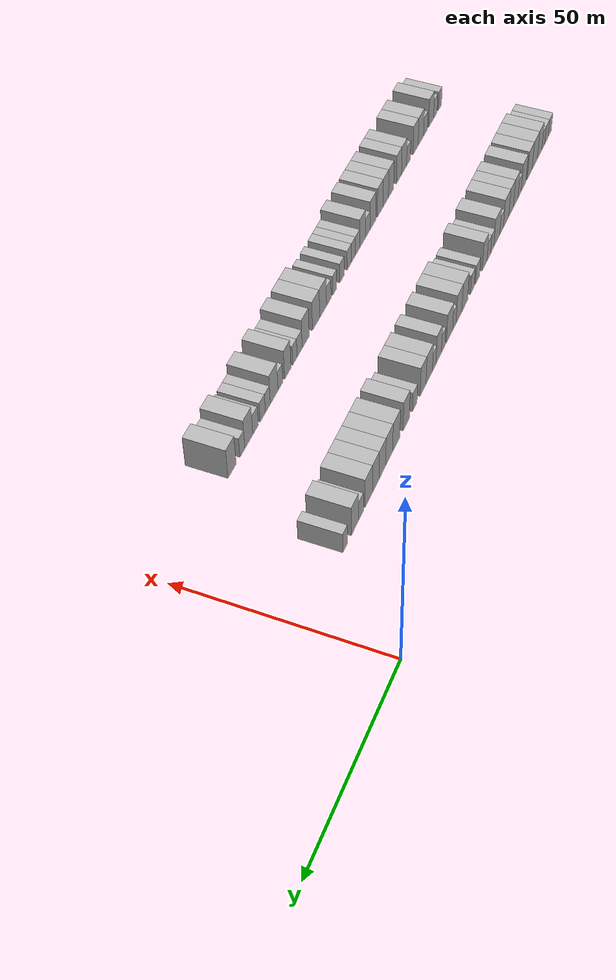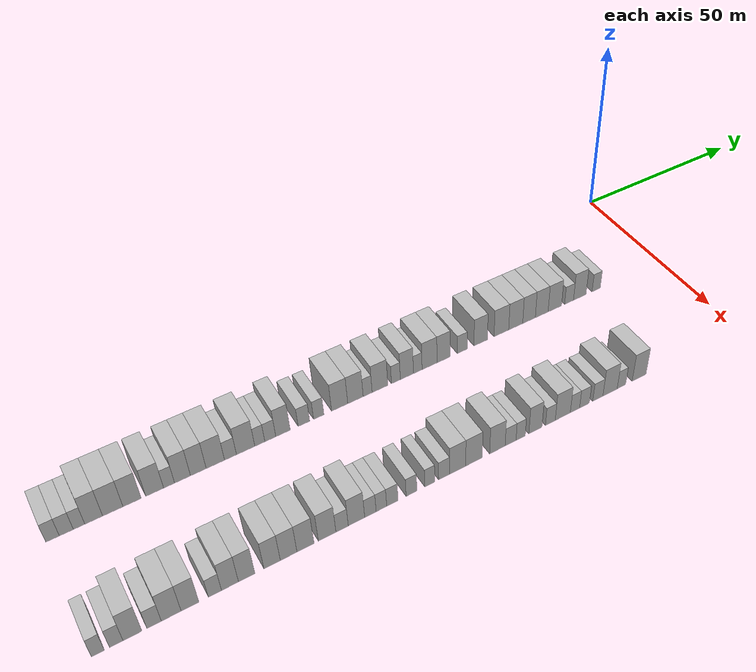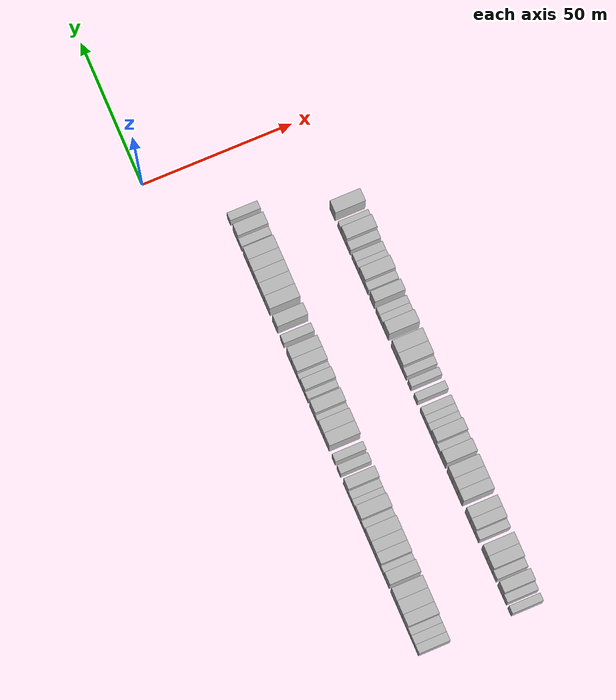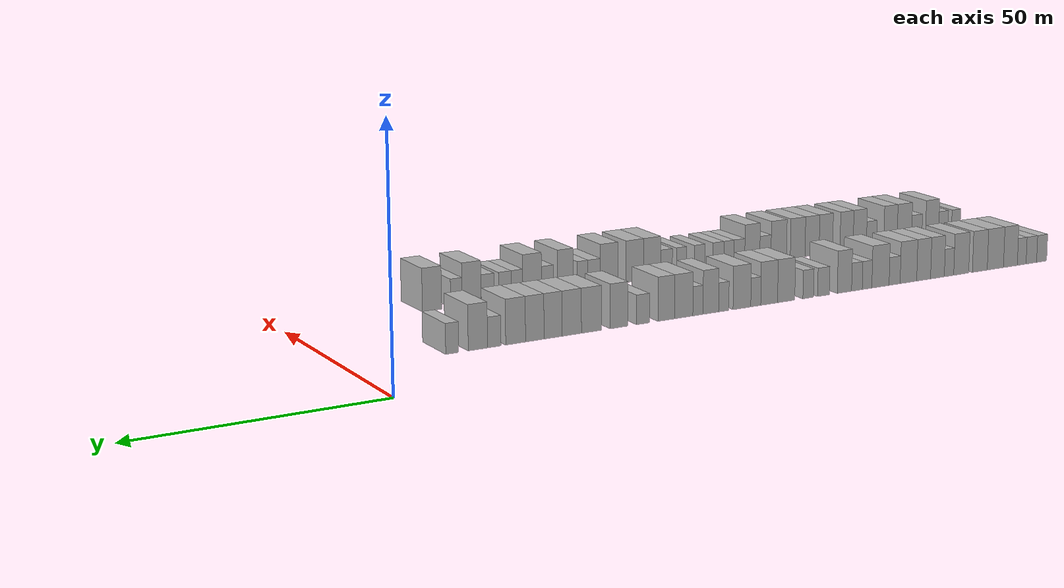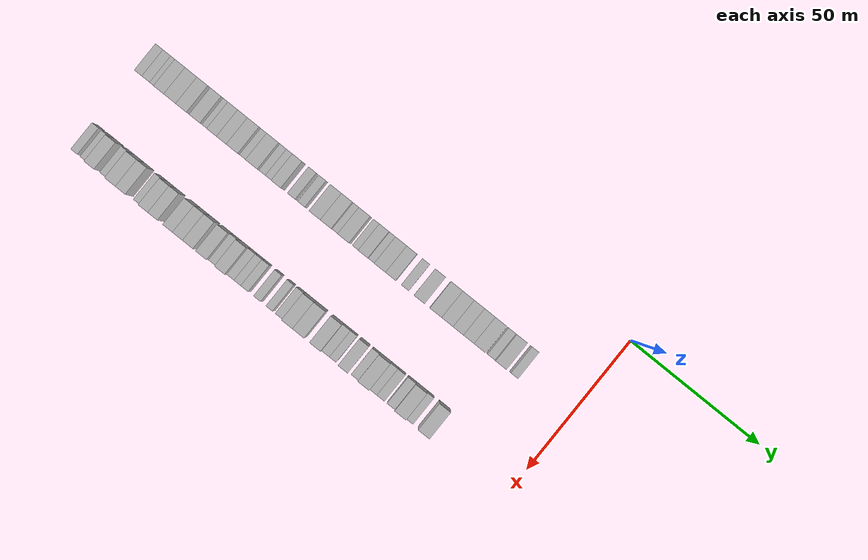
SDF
<sdf version="1.6">
 <world name="default">
  <model name="building_72">
   <static>1</static>
   <pose>25.0000 -164.3225 0 0.000000 0.000000 0.000000</pose>
   <link name="link">
    <pose>0 0 3.00 0 0 0</pose>
    <collision name="collision"><geometry><box><size>10.0000 2.8551 6.0000</size></box></geometry></collision>
    <visual name="visual">
     <cast_shadows>0</cast_shadows>
     <geometry><box><size>10.0000 2.8551 6.0000</size></box></geometry>
     <material>
      <script>
       <uri>model://HANNAS_wall/materials/scripts</uri>
       <uri>model://HANNAS_wall/materials/textures</uri>
       <name>vrc/HANNAS_wall</name>
      </script>
     </material>
    </visual>
   </link>
  </model>
  <model name="building_73">
   <static>1</static>
   <pose>25.0000 -161.4131 0 0.000000 0.000000 0.000000</pose>
   <link name="link">
    <pose>0 0 3.00 0 0 0</pose>
    <collision name="collision"><geometry><box><size>10.0000 2.9638 6.0000</size></box></geometry></collision>
    <visual name="visual">
     <cast_shadows>0</cast_shadows>
     <geometry><box><size>10.0000 2.9638 6.0000</size></box></geometry>
     <material>
      <script>
       <uri>model://HANNAS_wall/materials/scripts</uri>
       <uri>model://HANNAS_wall/materials/textures</uri>
       <name>vrc/HANNAS_wall</name>
      </script>
     </material>
    </visual>
   </link>
  </model>
  <model name="building_74">
   <static>1</static>
   <pose>25.0000 -158.7070 0 0.000000 0.000000 0.000000</pose>
   <link name="link">
    <pose>0 0 3.00 0 0 0</pose>
    <collision name="collision"><geometry><box><size>10.0000 2.4485 6.0000</size></box></geometry></collision>
    <visual name="visual">
     <cast_shadows>0</cast_shadows>
     <geometry><box><size>10.0000 2.4485 6.0000</size></box></geometry>
     <material>
      <script>
       <uri>model://HANNAS_wall/materials/scripts</uri>
       <uri>model://HANNAS_wall/materials/textures</uri>
       <name>vrc/HANNAS_wall</name>
      </script>
     </material>
    </visual>
   </link>
  </model>
  <model name="building_75">
   <static>1</static>
   <pose>25.0000 -155.5520 0 0.000000 0.000000 0.000000</pose>
   <link name="link">
    <pose>0 0 4.50 0 0 0</pose>
    <collision name="collision"><geometry><box><size>10.0000 3.8615 9.0000</size></box></geometry></collision>
    <visual name="visual">
     <cast_shadows>0</cast_shadows>
     <geometry><box><size>10.0000 3.8615 9.0000</size></box></geometry>
     <material>
      <script>
       <uri>model://HANNAS_wall/materials/scripts</uri>
       <uri>model://HANNAS_wall/materials/textures</uri>
       <name>vrc/HANNAS_wall</name>
      </script>
     </material>
    </visual>
   </link>
  </model>
  <model name="building_76">
   <static>1</static>
   <pose>25.0000 -151.3878 0 0.000000 0.000000 0.000000</pose>
   <link name="link">
    <pose>0 0 4.50 0 0 0</pose>
    <collision name="collision"><geometry><box><size>10.0000 4.4668 9.0000</size></box></geometry></collision>
    <visual name="visual">
     <cast_shadows>0</cast_shadows>
     <geometry><box><size>10.0000 4.4668 9.0000</size></box></geometry>
     <material>
      <script>
       <uri>model://HANNAS_wall/materials/scripts</uri>
       <uri>model://HANNAS_wall/materials/textures</uri>
       <name>vrc/HANNAS_wall</name>
      </script>
     </material>
    </visual>
   </link>
  </model>
  <model name="building_77">
   <static>1</static>
   <pose>25.0000 -147.1197 0 0.000000 0.000000 0.000000</pose>
   <link name="link">
    <pose>0 0 4.50 0 0 0</pose>
    <collision name="collision"><geometry><box><size>10.0000 4.0694 9.0000</size></box></geometry></collision>
    <visual name="visual">
     <cast_shadows>0</cast_shadows>
     <geometry><box><size>10.0000 4.0694 9.0000</size></box></geometry>
     <material>
      <script>
       <uri>model://HANNAS_wall/materials/scripts</uri>
       <uri>model://HANNAS_wall/materials/textures</uri>
       <name>vrc/HANNAS_wall</name>
      </script>
     </material>
    </visual>
   </link>
  </model>
  <model name="building_78">
   <static>1</static>
   <pose>25.0000 -142.0552 0 0.000000 0.000000 0.000000</pose>
   <link name="link">
    <pose>0 0 4.50 0 0 0</pose>
    <collision name="collision"><geometry><box><size>10.0000 4.0596 9.0000</size></box></geometry></collision>
    <visual name="visual">
     <cast_shadows>0</cast_shadows>
     <geometry><box><size>10.0000 4.0596 9.0000</size></box></geometry>
     <material>
      <script>
       <uri>model://HANNAS_wall/materials/scripts</uri>
       <uri>model://HANNAS_wall/materials/textures</uri>
       <name>vrc/HANNAS_wall</name>
      </script>
     </material>
    </visual>
   </link>
  </model>
  <model name="building_79">
   <static>1</static>
   <pose>25.0000 -138.7680 0 0.000000 0.000000 0.000000</pose>
   <link name="link">
    <pose>0 0 3.00 0 0 0</pose>
    <collision name="collision"><geometry><box><size>10.0000 2.5148 6.0000</size></box></geometry></collision>
    <visual name="visual">
     <cast_shadows>0</cast_shadows>
     <geometry><box><size>10.0000 2.5148 6.0000</size></box></geometry>
     <material>
      <script>
       <uri>model://HANNAS_wall/materials/scripts</uri>
       <uri>model://HANNAS_wall/materials/textures</uri>
       <name>vrc/HANNAS_wall</name>
      </script>
     </material>
    </visual>
   </link>
  </model>
  <model name="building_80">
   <static>1</static>
   <pose>25.0000 -135.6658 0 0.000000 0.000000 0.000000</pose>
   <link name="link">
    <pose>0 0 4.50 0 0 0</pose>
    <collision name="collision"><geometry><box><size>10.0000 3.6895 9.0000</size></box></geometry></collision>
    <visual name="visual">
     <cast_shadows>0</cast_shadows>
     <geometry><box><size>10.0000 3.6895 9.0000</size></box></geometry>
     <material>
      <script>
       <uri>model://HANNAS_wall/materials/scripts</uri>
       <uri>model://HANNAS_wall/materials/textures</uri>
       <name>vrc/HANNAS_wall</name>
      </script>
     </material>
    </visual>
   </link>
  </model>
  <model name="building_81">
   <static>1</static>
   <pose>25.0000 -131.9838 0 0.000000 0.000000 0.000000</pose>
   <link name="link">
    <pose>0 0 4.50 0 0 0</pose>
    <collision name="collision"><geometry><box><size>10.0000 3.6746 9.0000</size></box></geometry></collision>
    <visual name="visual">
     <cast_shadows>0</cast_shadows>
     <geometry><box><size>10.0000 3.6746 9.0000</size></box></geometry>
     <material>
      <script>
       <uri>model://HANNAS_wall/materials/scripts</uri>
       <uri>model://HANNAS_wall/materials/textures</uri>
       <name>vrc/HANNAS_wall</name>
      </script>
     </material>
    </visual>
   </link>
  </model>
  <model name="building_82">
   <static>1</static>
   <pose>25.0000 -127.9675 0 0.000000 0.000000 0.000000</pose>
   <link name="link">
    <pose>0 0 4.50 0 0 0</pose>
    <collision name="collision"><geometry><box><size>10.0000 4.3580 9.0000</size></box></geometry></collision>
    <visual name="visual">
     <cast_shadows>0</cast_shadows>
     <geometry><box><size>10.0000 4.3580 9.0000</size></box></geometry>
     <material>
      <script>
       <uri>model://HANNAS_wall/materials/scripts</uri>
       <uri>model://HANNAS_wall/materials/textures</uri>
       <name>vrc/HANNAS_wall</name>
      </script>
     </material>
    </visual>
   </link>
  </model>
  <model name="building_83">
   <static>1</static>
   <pose>25.0000 -124.3475 0 0.000000 0.000000 0.000000</pose>
   <link name="link">
    <pose>0 0 3.00 0 0 0</pose>
    <collision name="collision"><geometry><box><size>10.0000 2.8819 6.0000</size></box></geometry></collision>
    <visual name="visual">
     <cast_shadows>0</cast_shadows>
     <geometry><box><size>10.0000 2.8819 6.0000</size></box></geometry>
     <material>
      <script>
       <uri>model://HANNAS_wall/materials/scripts</uri>
       <uri>model://HANNAS_wall/materials/textures</uri>
       <name>vrc/HANNAS_wall</name>
      </script>
     </material>
    </visual>
   </link>
  </model>
  <model name="building_84">
   <static>1</static>
   <pose>25.0000 -120.6741 0 0.000000 0.000000 0.000000</pose>
   <link name="link">
    <pose>0 0 4.50 0 0 0</pose>
    <collision name="collision"><geometry><box><size>10.0000 4.4650 9.0000</size></box></geometry></collision>
    <visual name="visual">
     <cast_shadows>0</cast_shadows>
     <geometry><box><size>10.0000 4.4650 9.0000</size></box></geometry>
     <material>
      <script>
       <uri>model://HANNAS_wall/materials/scripts</uri>
       <uri>model://HANNAS_wall/materials/textures</uri>
       <name>vrc/HANNAS_wall</name>
      </script>
     </material>
    </visual>
   </link>
  </model>
  <model name="building_85">
   <static>1</static>
   <pose>25.0000 -117.2105 0 0.000000 0.000000 0.000000</pose>
   <link name="link">
    <pose>0 0 3.00 0 0 0</pose>
    <collision name="collision"><geometry><box><size>10.0000 2.4622 6.0000</size></box></geometry></collision>
    <visual name="visual">
     <cast_shadows>0</cast_shadows>
     <geometry><box><size>10.0000 2.4622 6.0000</size></box></geometry>
     <material>
      <script>
       <uri>model://HANNAS_wall/materials/scripts</uri>
       <uri>model://HANNAS_wall/materials/textures</uri>
       <name>vrc/HANNAS_wall</name>
      </script>
     </material>
    </visual>
   </link>
  </model>
  <model name="building_86">
   <static>1</static>
   <pose>25.0000 -114.6147 0 0.000000 0.000000 0.000000</pose>
   <link name="link">
    <pose>0 0 3.00 0 0 0</pose>
    <collision name="collision"><geometry><box><size>10.0000 2.7295 6.0000</size></box></geometry></collision>
    <visual name="visual">
     <cast_shadows>0</cast_shadows>
     <geometry><box><size>10.0000 2.7295 6.0000</size></box></geometry>
     <material>
      <script>
       <uri>model://HANNAS_wall/materials/scripts</uri>
       <uri>model://HANNAS_wall/materials/textures</uri>
       <name>vrc/HANNAS_wall</name>
      </script>
     </material>
    </visual>
   </link>
  </model>
  <model name="building_87">
   <static>1</static>
   <pose>25.0000 -111.4360 0 0.000000 0.000000 0.000000</pose>
   <link name="link">
    <pose>0 0 4.50 0 0 0</pose>
    <collision name="collision"><geometry><box><size>10.0000 3.6279 9.0000</size></box></geometry></collision>
    <visual name="visual">
     <cast_shadows>0</cast_shadows>
     <geometry><box><size>10.0000 3.6279 9.0000</size></box></geometry>
     <material>
      <script>
       <uri>model://HANNAS_wall/materials/scripts</uri>
       <uri>model://HANNAS_wall/materials/textures</uri>
       <name>vrc/HANNAS_wall</name>
      </script>
     </material>
    </visual>
   </link>
  </model>
  <model name="building_88">
   <static>1</static>
   <pose>25.0000 -106.1443 0 0.000000 0.000000 0.000000</pose>
   <link name="link">
    <pose>0 0 3.00 0 0 0</pose>
    <collision name="collision"><geometry><box><size>10.0000 2.9556 6.0000</size></box></geometry></collision>
    <visual name="visual">
     <cast_shadows>0</cast_shadows>
     <geometry><box><size>10.0000 2.9556 6.0000</size></box></geometry>
     <material>
      <script>
       <uri>model://HANNAS_wall/materials/scripts</uri>
       <uri>model://HANNAS_wall/materials/textures</uri>
       <name>vrc/HANNAS_wall</name>
      </script>
     </material>
    </visual>
   </link>
  </model>
  <model name="building_89">
   <static>1</static>
   <pose>25.0000 -102.3302 0 0.000000 0.000000 0.000000</pose>
   <link name="link">
    <pose>0 0 3.00 0 0 0</pose>
    <collision name="collision"><geometry><box><size>10.0000 2.6725 6.0000</size></box></geometry></collision>
    <visual name="visual">
     <cast_shadows>0</cast_shadows>
     <geometry><box><size>10.0000 2.6725 6.0000</size></box></geometry>
     <material>
      <script>
       <uri>model://HANNAS_wall/materials/scripts</uri>
       <uri>model://HANNAS_wall/materials/textures</uri>
       <name>vrc/HANNAS_wall</name>
      </script>
     </material>
    </visual>
   </link>
  </model>
  <model name="building_90">
   <static>1</static>
   <pose>25.0000 -96.8713 0 0.000000 0.000000 0.000000</pose>
   <link name="link">
    <pose>0 0 4.50 0 0 0</pose>
    <collision name="collision"><geometry><box><size>10.0000 4.2454 9.0000</size></box></geometry></collision>
    <visual name="visual">
     <cast_shadows>0</cast_shadows>
     <geometry><box><size>10.0000 4.2454 9.0000</size></box></geometry>
     <material>
      <script>
       <uri>model://HANNAS_wall/materials/scripts</uri>
       <uri>model://HANNAS_wall/materials/textures</uri>
       <name>vrc/HANNAS_wall</name>
      </script>
     </material>
    </visual>
   </link>
  </model>
  <model name="building_91">
   <static>1</static>
   <pose>25.0000 -92.6931 0 0.000000 0.000000 0.000000</pose>
   <link name="link">
    <pose>0 0 4.50 0 0 0</pose>
    <collision name="collision"><geometry><box><size>10.0000 4.1112 9.0000</size></box></geometry></collision>
    <visual name="visual">
     <cast_shadows>0</cast_shadows>
     <geometry><box><size>10.0000 4.1112 9.0000</size></box></geometry>
     <material>
      <script>
       <uri>model://HANNAS_wall/materials/scripts</uri>
       <uri>model://HANNAS_wall/materials/textures</uri>
       <name>vrc/HANNAS_wall</name>
      </script>
     </material>
    </visual>
   </link>
  </model>
  <model name="building_92">
   <static>1</static>
   <pose>25.0000 -89.4312 0 0.000000 0.000000 0.000000</pose>
   <link name="link">
    <pose>0 0 3.00 0 0 0</pose>
    <collision name="collision"><geometry><box><size>10.0000 2.4126 6.0000</size></box></geometry></collision>
    <visual name="visual">
     <cast_shadows>0</cast_shadows>
     <geometry><box><size>10.0000 2.4126 6.0000</size></box></geometry>
     <material>
      <script>
       <uri>model://HANNAS_wall/materials/scripts</uri>
       <uri>model://HANNAS_wall/materials/textures</uri>
       <name>vrc/HANNAS_wall</name>
      </script>
     </material>
    </visual>
   </link>
  </model>
  <model name="building_93">
   <static>1</static>
   <pose>25.0000 -86.0908 0 0.000000 0.000000 0.000000</pose>
   <link name="link">
    <pose>0 0 4.50 0 0 0</pose>
    <collision name="collision"><geometry><box><size>10.0000 4.2683 9.0000</size></box></geometry></collision>
    <visual name="visual">
     <cast_shadows>0</cast_shadows>
     <geometry><box><size>10.0000 4.2683 9.0000</size></box></geometry>
     <material>
      <script>
       <uri>model://HANNAS_wall/materials/scripts</uri>
       <uri>model://HANNAS_wall/materials/textures</uri>
       <name>vrc/HANNAS_wall</name>
      </script>
     </material>
    </visual>
   </link>
  </model>
  <model name="building_94">
   <static>1</static>
   <pose>25.0000 -81.7293 0 0.000000 0.000000 0.000000</pose>
   <link name="link">
    <pose>0 0 3.00 0 0 0</pose>
    <collision name="collision"><geometry><box><size>10.0000 2.4547 6.0000</size></box></geometry></collision>
    <visual name="visual">
     <cast_shadows>0</cast_shadows>
     <geometry><box><size>10.0000 2.4547 6.0000</size></box></geometry>
     <material>
      <script>
       <uri>model://HANNAS_wall/materials/scripts</uri>
       <uri>model://HANNAS_wall/materials/textures</uri>
       <name>vrc/HANNAS_wall</name>
      </script>
     </material>
    </visual>
   </link>
  </model>
  <model name="building_95">
   <static>1</static>
   <pose>25.0000 -78.6720 0 0.000000 0.000000 0.000000</pose>
   <link name="link">
    <pose>0 0 4.50 0 0 0</pose>
    <collision name="collision"><geometry><box><size>10.0000 3.6600 9.0000</size></box></geometry></collision>
    <visual name="visual">
     <cast_shadows>0</cast_shadows>
     <geometry><box><size>10.0000 3.6600 9.0000</size></box></geometry>
     <material>
      <script>
       <uri>model://HANNAS_wall/materials/scripts</uri>
       <uri>model://HANNAS_wall/materials/textures</uri>
       <name>vrc/HANNAS_wall</name>
      </script>
     </material>
    </visual>
   </link>
  </model>
  <model name="building_96">
   <static>1</static>
   <pose>25.0000 -75.6355 0 0.000000 0.000000 0.000000</pose>
   <link name="link">
    <pose>0 0 3.00 0 0 0</pose>
    <collision name="collision"><geometry><box><size>10.0000 2.4129 6.0000</size></box></geometry></collision>
    <visual name="visual">
     <cast_shadows>0</cast_shadows>
     <geometry><box><size>10.0000 2.4129 6.0000</size></box></geometry>
     <material>
      <script>
       <uri>model://HANNAS_wall/materials/scripts</uri>
       <uri>model://HANNAS_wall/materials/textures</uri>
       <name>vrc/HANNAS_wall</name>
      </script>
     </material>
    </visual>
   </link>
  </model>
  <model name="building_97">
   <static>1</static>
   <pose>25.0000 -72.2998 0 0.000000 0.000000 0.000000</pose>
   <link name="link">
    <pose>0 0 4.50 0 0 0</pose>
    <collision name="collision"><geometry><box><size>10.0000 4.2587 9.0000</size></box></geometry></collision>
    <visual name="visual">
     <cast_shadows>0</cast_shadows>
     <geometry><box><size>10.0000 4.2587 9.0000</size></box></geometry>
     <material>
      <script>
       <uri>model://HANNAS_wall/materials/scripts</uri>
       <uri>model://HANNAS_wall/materials/textures</uri>
       <name>vrc/HANNAS_wall</name>
      </script>
     </material>
    </visual>
   </link>
  </model>
  <model name="building_98">
   <static>1</static>
   <pose>25.0000 -68.2584 0 0.000000 0.000000 0.000000</pose>
   <link name="link">
    <pose>0 0 4.50 0 0 0</pose>
    <collision name="collision"><geometry><box><size>10.0000 3.8242 9.0000</size></box></geometry></collision>
    <visual name="visual">
     <cast_shadows>0</cast_shadows>
     <geometry><box><size>10.0000 3.8242 9.0000</size></box></geometry>
     <material>
      <script>
       <uri>model://HANNAS_wall/materials/scripts</uri>
       <uri>model://HANNAS_wall/materials/textures</uri>
       <name>vrc/HANNAS_wall</name>
      </script>
     </material>
    </visual>
   </link>
  </model>
  <model name="building_99">
   <static>1</static>
   <pose>25.0000 -62.9057 0 0.000000 0.000000 0.000000</pose>
   <link name="link">
    <pose>0 0 3.00 0 0 0</pose>
    <collision name="collision"><geometry><box><size>10.0000 2.8811 6.0000</size></box></geometry></collision>
    <visual name="visual">
     <cast_shadows>0</cast_shadows>
     <geometry><box><size>10.0000 2.8811 6.0000</size></box></geometry>
     <material>
      <script>
       <uri>model://HANNAS_wall/materials/scripts</uri>
       <uri>model://HANNAS_wall/materials/textures</uri>
       <name>vrc/HANNAS_wall</name>
      </script>
     </material>
    </visual>
   </link>
  </model>
  <model name="building_100">
   <static>1</static>
   <pose>25.0000 -57.4696 0 0.000000 0.000000 0.000000</pose>
   <link name="link">
    <pose>0 0 4.50 0 0 0</pose>
    <collision name="collision"><geometry><box><size>10.0000 3.9912 9.0000</size></box></geometry></collision>
    <visual name="visual">
     <cast_shadows>0</cast_shadows>
     <geometry><box><size>10.0000 3.9912 9.0000</size></box></geometry>
     <material>
      <script>
       <uri>model://HANNAS_wall/materials/scripts</uri>
       <uri>model://HANNAS_wall/materials/textures</uri>
       <name>vrc/HANNAS_wall</name>
      </script>
     </material>
    </visual>
   </link>
  </model>
  <model name="building_101">
   <static>1</static>
   <pose>25.0000 -51.2610 0 0.000000 0.000000 0.000000</pose>
   <link name="link">
    <pose>0 0 4.50 0 0 0</pose>
    <collision name="collision"><geometry><box><size>10.0000 4.4260 9.0000</size></box></geometry></collision>
    <visual name="visual">
     <cast_shadows>0</cast_shadows>
     <geometry><box><size>10.0000 4.4260 9.0000</size></box></geometry>
     <material>
      <script>
       <uri>model://HANNAS_wall/materials/scripts</uri>
       <uri>model://HANNAS_wall/materials/textures</uri>
       <name>vrc/HANNAS_wall</name>
      </script>
     </material>
    </visual>
   </link>
  </model>
  <model name="building_102">
   <static>1</static>
   <pose>25.0000 -46.9017 0 0.000000 0.000000 0.000000</pose>
   <link name="link">
    <pose>0 0 4.50 0 0 0</pose>
    <collision name="collision"><geometry><box><size>10.0000 4.2926 9.0000</size></box></geometry></collision>
    <visual name="visual">
     <cast_shadows>0</cast_shadows>
     <geometry><box><size>10.0000 4.2926 9.0000</size></box></geometry>
     <material>
      <script>
       <uri>model://HANNAS_wall/materials/scripts</uri>
       <uri>model://HANNAS_wall/materials/textures</uri>
       <name>vrc/HANNAS_wall</name>
      </script>
     </material>
    </visual>
   </link>
  </model>
  <model name="building_103">
   <static>1</static>
   <pose>25.0000 -42.7982 0 0.000000 0.000000 0.000000</pose>
   <link name="link">
    <pose>0 0 4.50 0 0 0</pose>
    <collision name="collision"><geometry><box><size>10.0000 3.9143 9.0000</size></box></geometry></collision>
    <visual name="visual">
     <cast_shadows>0</cast_shadows>
     <geometry><box><size>10.0000 3.9143 9.0000</size></box></geometry>
     <material>
      <script>
       <uri>model://HANNAS_wall/materials/scripts</uri>
       <uri>model://HANNAS_wall/materials/textures</uri>
       <name>vrc/HANNAS_wall</name>
      </script>
     </material>
    </visual>
   </link>
  </model>
  <model name="building_104">
   <static>1</static>
   <pose>25.0000 -38.8359 0 0.000000 0.000000 0.000000</pose>
   <link name="link">
    <pose>0 0 4.50 0 0 0</pose>
    <collision name="collision"><geometry><box><size>10.0000 4.0103 9.0000</size></box></geometry></collision>
    <visual name="visual">
     <cast_shadows>0</cast_shadows>
     <geometry><box><size>10.0000 4.0103 9.0000</size></box></geometry>
     <material>
      <script>
       <uri>model://HANNAS_wall/materials/scripts</uri>
       <uri>model://HANNAS_wall/materials/textures</uri>
       <name>vrc/HANNAS_wall</name>
      </script>
     </material>
    </visual>
   </link>
  </model>
  <model name="building_105">
   <static>1</static>
   <pose>25.0000 -34.7032 0 0.000000 0.000000 0.000000</pose>
   <link name="link">
    <pose>0 0 4.50 0 0 0</pose>
    <collision name="collision"><geometry><box><size>10.0000 4.2551 9.0000</size></box></geometry></collision>
    <visual name="visual">
     <cast_shadows>0</cast_shadows>
     <geometry><box><size>10.0000 4.2551 9.0000</size></box></geometry>
     <material>
      <script>
       <uri>model://HANNAS_wall/materials/scripts</uri>
       <uri>model://HANNAS_wall/materials/textures</uri>
       <name>vrc/HANNAS_wall</name>
      </script>
     </material>
    </visual>
   </link>
  </model>
  <model name="building_106">
   <static>1</static>
   <pose>25.0000 -30.1521 0 0.000000 0.000000 0.000000</pose>
   <link name="link">
    <pose>0 0 3.00 0 0 0</pose>
    <collision name="collision"><geometry><box><size>10.0000 2.8469 6.0000</size></box></geometry></collision>
    <visual name="visual">
     <cast_shadows>0</cast_shadows>
     <geometry><box><size>10.0000 2.8469 6.0000</size></box></geometry>
     <material>
      <script>
       <uri>model://HANNAS_wall/materials/scripts</uri>
       <uri>model://HANNAS_wall/materials/textures</uri>
       <name>vrc/HANNAS_wall</name>
      </script>
     </material>
    </visual>
   </link>
  </model>
  <model name="building_107">
   <static>1</static>
   <pose>25.0000 -26.6925 0 0.000000 0.000000 0.000000</pose>
   <link name="link">
    <pose>0 0 4.50 0 0 0</pose>
    <collision name="collision"><geometry><box><size>10.0000 4.0724 9.0000</size></box></geometry></collision>
    <visual name="visual">
     <cast_shadows>0</cast_shadows>
     <geometry><box><size>10.0000 4.0724 9.0000</size></box></geometry>
     <material>
      <script>
       <uri>model://HANNAS_wall/materials/scripts</uri>
       <uri>model://HANNAS_wall/materials/textures</uri>
       <name>vrc/HANNAS_wall</name>
      </script>
     </material>
    </visual>
   </link>
  </model>
  <model name="building_108">
   <static>1</static>
   <pose>25.0000 -21.3110 0 0.000000 0.000000 0.000000</pose>
   <link name="link">
    <pose>0 0 3.00 0 0 0</pose>
    <collision name="collision"><geometry><box><size>10.0000 2.6906 6.0000</size></box></geometry></collision>
    <visual name="visual">
     <cast_shadows>0</cast_shadows>
     <geometry><box><size>10.0000 2.6906 6.0000</size></box></geometry>
     <material>
      <script>
       <uri>model://HANNAS_wall/materials/scripts</uri>
       <uri>model://HANNAS_wall/materials/textures</uri>
       <name>vrc/HANNAS_wall</name>
      </script>
     </material>
    </visual>
   </link>
  </model>
  <model name="building_302">
   <static>1</static>
   <pose>55.0000 -164.4883 0 0.000000 0.000000 0.000000</pose>
   <link name="link">
    <pose>0 0 3.00 0 0 0</pose>
    <collision name="collision"><geometry><box><size>10.0000 2.5350 6.0000</size></box></geometry></collision>
    <visual name="visual">
     <cast_shadows>0</cast_shadows>
     <geometry><box><size>10.0000 2.5350 6.0000</size></box></geometry>
     <material>
      <script>
       <uri>model://HANNAS_wall/materials/scripts</uri>
       <uri>model://HANNAS_wall/materials/textures</uri>
       <name>vrc/HANNAS_wall</name>
      </script>
     </material>
    </visual>
   </link>
  </model>
  <model name="building_303">
   <static>1</static>
   <pose>55.0000 -160.8847 0 0.000000 0.000000 0.000000</pose>
   <link name="link">
    <pose>0 0 3.00 0 0 0</pose>
    <collision name="collision"><geometry><box><size>10.0000 2.6722 6.0000</size></box></geometry></collision>
    <visual name="visual">
     <cast_shadows>0</cast_shadows>
     <geometry><box><size>10.0000 2.6722 6.0000</size></box></geometry>
     <material>
      <script>
       <uri>model://HANNAS_wall/materials/scripts</uri>
       <uri>model://HANNAS_wall/materials/textures</uri>
       <name>vrc/HANNAS_wall</name>
      </script>
     </material>
    </visual>
   </link>
  </model>
  <model name="building_304">
   <static>1</static>
   <pose>55.0000 -157.6512 0 0.000000 0.000000 0.000000</pose>
   <link name="link">
    <pose>0 0 4.50 0 0 0</pose>
    <collision name="collision"><geometry><box><size>10.0000 3.7949 9.0000</size></box></geometry></collision>
    <visual name="visual">
     <cast_shadows>0</cast_shadows>
     <geometry><box><size>10.0000 3.7949 9.0000</size></box></geometry>
     <material>
      <script>
       <uri>model://HANNAS_wall/materials/scripts</uri>
       <uri>model://HANNAS_wall/materials/textures</uri>
       <name>vrc/HANNAS_wall</name>
      </script>
     </material>
    </visual>
   </link>
  </model>
  <model name="building_305">
   <static>1</static>
   <pose>55.0000 -153.2830 0 0.000000 0.000000 0.000000</pose>
   <link name="link">
    <pose>0 0 3.00 0 0 0</pose>
    <collision name="collision"><geometry><box><size>10.0000 2.9416 6.0000</size></box></geometry></collision>
    <visual name="visual">
     <cast_shadows>0</cast_shadows>
     <geometry><box><size>10.0000 2.9416 6.0000</size></box></geometry>
     <material>
      <script>
       <uri>model://HANNAS_wall/materials/scripts</uri>
       <uri>model://HANNAS_wall/materials/textures</uri>
       <name>vrc/HANNAS_wall</name>
      </script>
     </material>
    </visual>
   </link>
  </model>
  <model name="building_306">
   <static>1</static>
   <pose>55.0000 -149.7677 0 0.000000 0.000000 0.000000</pose>
   <link name="link">
    <pose>0 0 4.50 0 0 0</pose>
    <collision name="collision"><geometry><box><size>10.0000 4.0890 9.0000</size></box></geometry></collision>
    <visual name="visual">
     <cast_shadows>0</cast_shadows>
     <geometry><box><size>10.0000 4.0890 9.0000</size></box></geometry>
     <material>
      <script>
       <uri>model://HANNAS_wall/materials/scripts</uri>
       <uri>model://HANNAS_wall/materials/textures</uri>
       <name>vrc/HANNAS_wall</name>
      </script>
     </material>
    </visual>
   </link>
  </model>
  <model name="building_307">
   <static>1</static>
   <pose>55.0000 -145.8571 0 0.000000 0.000000 0.000000</pose>
   <link name="link">
    <pose>0 0 4.50 0 0 0</pose>
    <collision name="collision"><geometry><box><size>10.0000 3.7322 9.0000</size></box></geometry></collision>
    <visual name="visual">
     <cast_shadows>0</cast_shadows>
     <geometry><box><size>10.0000 3.7322 9.0000</size></box></geometry>
     <material>
      <script>
       <uri>model://HANNAS_wall/materials/scripts</uri>
       <uri>model://HANNAS_wall/materials/textures</uri>
       <name>vrc/HANNAS_wall</name>
      </script>
     </material>
    </visual>
   </link>
  </model>
  <model name="building_308">
   <static>1</static>
   <pose>55.0000 -140.5823 0 0.000000 0.000000 0.000000</pose>
   <link name="link">
    <pose>0 0 3.00 0 0 0</pose>
    <collision name="collision"><geometry><box><size>10.0000 2.8174 6.0000</size></box></geometry></collision>
    <visual name="visual">
     <cast_shadows>0</cast_shadows>
     <geometry><box><size>10.0000 2.8174 6.0000</size></box></geometry>
     <material>
      <script>
       <uri>model://HANNAS_wall/materials/scripts</uri>
       <uri>model://HANNAS_wall/materials/textures</uri>
       <name>vrc/HANNAS_wall</name>
      </script>
     </material>
    </visual>
   </link>
  </model>
  <model name="building_309">
   <static>1</static>
   <pose>55.0000 -137.3434 0 0.000000 0.000000 0.000000</pose>
   <link name="link">
    <pose>0 0 4.50 0 0 0</pose>
    <collision name="collision"><geometry><box><size>10.0000 3.6606 9.0000</size></box></geometry></collision>
    <visual name="visual">
     <cast_shadows>0</cast_shadows>
     <geometry><box><size>10.0000 3.6606 9.0000</size></box></geometry>
     <material>
      <script>
       <uri>model://HANNAS_wall/materials/scripts</uri>
       <uri>model://HANNAS_wall/materials/textures</uri>
       <name>vrc/HANNAS_wall</name>
      </script>
     </material>
    </visual>
   </link>
  </model>
  <model name="building_310">
   <static>1</static>
   <pose>55.0000 -133.7084 0 0.000000 0.000000 0.000000</pose>
   <link name="link">
    <pose>0 0 4.50 0 0 0</pose>
    <collision name="collision"><geometry><box><size>10.0000 3.6094 9.0000</size></box></geometry></collision>
    <visual name="visual">
     <cast_shadows>0</cast_shadows>
     <geometry><box><size>10.0000 3.6094 9.0000</size></box></geometry>
     <material>
      <script>
       <uri>model://HANNAS_wall/materials/scripts</uri>
       <uri>model://HANNAS_wall/materials/textures</uri>
       <name>vrc/HANNAS_wall</name>
      </script>
     </material>
    </visual>
   </link>
  </model>
  <model name="building_311">
   <static>1</static>
   <pose>55.0000 -128.0723 0 0.000000 0.000000 0.000000</pose>
   <link name="link">
    <pose>0 0 4.50 0 0 0</pose>
    <collision name="collision"><geometry><box><size>10.0000 3.6627 9.0000</size></box></geometry></collision>
    <visual name="visual">
     <cast_shadows>0</cast_shadows>
     <geometry><box><size>10.0000 3.6627 9.0000</size></box></geometry>
     <material>
      <script>
       <uri>model://HANNAS_wall/materials/scripts</uri>
       <uri>model://HANNAS_wall/materials/textures</uri>
       <name>vrc/HANNAS_wall</name>
      </script>
     </material>
    </visual>
   </link>
  </model>
  <model name="building_312">
   <static>1</static>
   <pose>55.0000 -124.3521 0 0.000000 0.000000 0.000000</pose>
   <link name="link">
    <pose>0 0 4.50 0 0 0</pose>
    <collision name="collision"><geometry><box><size>10.0000 3.7777 9.0000</size></box></geometry></collision>
    <visual name="visual">
     <cast_shadows>0</cast_shadows>
     <geometry><box><size>10.0000 3.7777 9.0000</size></box></geometry>
     <material>
      <script>
       <uri>model://HANNAS_wall/materials/scripts</uri>
       <uri>model://HANNAS_wall/materials/textures</uri>
       <name>vrc/HANNAS_wall</name>
      </script>
     </material>
    </visual>
   </link>
  </model>
  <model name="building_313">
   <static>1</static>
   <pose>55.0000 -120.4981 0 0.000000 0.000000 0.000000</pose>
   <link name="link">
    <pose>0 0 4.50 0 0 0</pose>
    <collision name="collision"><geometry><box><size>10.0000 3.9303 9.0000</size></box></geometry></collision>
    <visual name="visual">
     <cast_shadows>0</cast_shadows>
     <geometry><box><size>10.0000 3.9303 9.0000</size></box></geometry>
     <material>
      <script>
       <uri>model://HANNAS_wall/materials/scripts</uri>
       <uri>model://HANNAS_wall/materials/textures</uri>
       <name>vrc/HANNAS_wall</name>
      </script>
     </material>
    </visual>
   </link>
  </model>
  <model name="building_314">
   <static>1</static>
   <pose>55.0000 -115.4761 0 0.000000 0.000000 0.000000</pose>
   <link name="link">
    <pose>0 0 4.50 0 0 0</pose>
    <collision name="collision"><geometry><box><size>10.0000 4.1137 9.0000</size></box></geometry></collision>
    <visual name="visual">
     <cast_shadows>0</cast_shadows>
     <geometry><box><size>10.0000 4.1137 9.0000</size></box></geometry>
     <material>
      <script>
       <uri>model://HANNAS_wall/materials/scripts</uri>
       <uri>model://HANNAS_wall/materials/textures</uri>
       <name>vrc/HANNAS_wall</name>
      </script>
     </material>
    </visual>
   </link>
  </model>
  <model name="building_315">
   <static>1</static>
   <pose>55.0000 -111.9548 0 0.000000 0.000000 0.000000</pose>
   <link name="link">
    <pose>0 0 3.00 0 0 0</pose>
    <collision name="collision"><geometry><box><size>10.0000 2.9290 6.0000</size></box></geometry></collision>
    <visual name="visual">
     <cast_shadows>0</cast_shadows>
     <geometry><box><size>10.0000 2.9290 6.0000</size></box></geometry>
     <material>
      <script>
       <uri>model://HANNAS_wall/materials/scripts</uri>
       <uri>model://HANNAS_wall/materials/textures</uri>
       <name>vrc/HANNAS_wall</name>
      </script>
     </material>
    </visual>
   </link>
  </model>
  <model name="building_316">
   <static>1</static>
   <pose>55.0000 -108.5262 0 0.000000 0.000000 0.000000</pose>
   <link name="link">
    <pose>0 0 4.50 0 0 0</pose>
    <collision name="collision"><geometry><box><size>10.0000 3.9283 9.0000</size></box></geometry></collision>
    <visual name="visual">
     <cast_shadows>0</cast_shadows>
     <geometry><box><size>10.0000 3.9283 9.0000</size></box></geometry>
     <material>
      <script>
       <uri>model://HANNAS_wall/materials/scripts</uri>
       <uri>model://HANNAS_wall/materials/textures</uri>
       <name>vrc/HANNAS_wall</name>
      </script>
     </material>
    </visual>
   </link>
  </model>
  <model name="building_317">
   <static>1</static>
   <pose>55.0000 -105.1742 0 0.000000 0.000000 0.000000</pose>
   <link name="link">
    <pose>0 0 3.00 0 0 0</pose>
    <collision name="collision"><geometry><box><size>10.0000 2.7757 6.0000</size></box></geometry></collision>
    <visual name="visual">
     <cast_shadows>0</cast_shadows>
     <geometry><box><size>10.0000 2.7757 6.0000</size></box></geometry>
     <material>
      <script>
       <uri>model://HANNAS_wall/materials/scripts</uri>
       <uri>model://HANNAS_wall/materials/textures</uri>
       <name>vrc/HANNAS_wall</name>
      </script>
     </material>
    </visual>
   </link>
  </model>
  <model name="building_318">
   <static>1</static>
   <pose>55.0000 -102.4972 0 0.000000 0.000000 0.000000</pose>
   <link name="link">
    <pose>0 0 3.00 0 0 0</pose>
    <collision name="collision"><geometry><box><size>10.0000 2.5783 6.0000</size></box></geometry></collision>
    <visual name="visual">
     <cast_shadows>0</cast_shadows>
     <geometry><box><size>10.0000 2.5783 6.0000</size></box></geometry>
     <material>
      <script>
       <uri>model://HANNAS_wall/materials/scripts</uri>
       <uri>model://HANNAS_wall/materials/textures</uri>
       <name>vrc/HANNAS_wall</name>
      </script>
     </material>
    </visual>
   </link>
  </model>
  <model name="building_319">
   <static>1</static>
   <pose>55.0000 -99.7945 0 0.000000 0.000000 0.000000</pose>
   <link name="link">
    <pose>0 0 3.00 0 0 0</pose>
    <collision name="collision"><geometry><box><size>10.0000 2.8272 6.0000</size></box></geometry></collision>
    <visual name="visual">
     <cast_shadows>0</cast_shadows>
     <geometry><box><size>10.0000 2.8272 6.0000</size></box></geometry>
     <material>
      <script>
       <uri>model://HANNAS_wall/materials/scripts</uri>
       <uri>model://HANNAS_wall/materials/textures</uri>
       <name>vrc/HANNAS_wall</name>
      </script>
     </material>
    </visual>
   </link>
  </model>
  <model name="building_320">
   <static>1</static>
   <pose>55.0000 -95.0224 0 0.000000 0.000000 0.000000</pose>
   <link name="link">
    <pose>0 0 3.00 0 0 0</pose>
    <collision name="collision"><geometry><box><size>10.0000 2.7169 6.0000</size></box></geometry></collision>
    <visual name="visual">
     <cast_shadows>0</cast_shadows>
     <geometry><box><size>10.0000 2.7169 6.0000</size></box></geometry>
     <material>
      <script>
       <uri>model://HANNAS_wall/materials/scripts</uri>
       <uri>model://HANNAS_wall/materials/textures</uri>
       <name>vrc/HANNAS_wall</name>
      </script>
     </material>
    </visual>
   </link>
  </model>
  <model name="building_321">
   <static>1</static>
   <pose>55.0000 -90.3999 0 0.000000 0.000000 0.000000</pose>
   <link name="link">
    <pose>0 0 3.00 0 0 0</pose>
    <collision name="collision"><geometry><box><size>10.0000 2.5282 6.0000</size></box></geometry></collision>
    <visual name="visual">
     <cast_shadows>0</cast_shadows>
     <geometry><box><size>10.0000 2.5282 6.0000</size></box></geometry>
     <material>
      <script>
       <uri>model://HANNAS_wall/materials/scripts</uri>
       <uri>model://HANNAS_wall/materials/textures</uri>
       <name>vrc/HANNAS_wall</name>
      </script>
     </material>
    </visual>
   </link>
  </model>
  <model name="building_322">
   <static>1</static>
   <pose>55.0000 -86.6970 0 0.000000 0.000000 0.000000</pose>
   <link name="link">
    <pose>0 0 3.00 0 0 0</pose>
    <collision name="collision"><geometry><box><size>10.0000 2.8775 6.0000</size></box></geometry></collision>
    <visual name="visual">
     <cast_shadows>0</cast_shadows>
     <geometry><box><size>10.0000 2.8775 6.0000</size></box></geometry>
     <material>
      <script>
       <uri>model://HANNAS_wall/materials/scripts</uri>
       <uri>model://HANNAS_wall/materials/textures</uri>
       <name>vrc/HANNAS_wall</name>
      </script>
     </material>
    </visual>
   </link>
  </model>
  <model name="building_323">
   <static>1</static>
   <pose>55.0000 -83.1725 0 0.000000 0.000000 0.000000</pose>
   <link name="link">
    <pose>0 0 4.50 0 0 0</pose>
    <collision name="collision"><geometry><box><size>10.0000 4.1716 9.0000</size></box></geometry></collision>
    <visual name="visual">
     <cast_shadows>0</cast_shadows>
     <geometry><box><size>10.0000 4.1716 9.0000</size></box></geometry>
     <material>
      <script>
       <uri>model://HANNAS_wall/materials/scripts</uri>
       <uri>model://HANNAS_wall/materials/textures</uri>
       <name>vrc/HANNAS_wall</name>
      </script>
     </material>
    </visual>
   </link>
  </model>
  <model name="building_324">
   <static>1</static>
   <pose>55.0000 -78.8921 0 0.000000 0.000000 0.000000</pose>
   <link name="link">
    <pose>0 0 4.50 0 0 0</pose>
    <collision name="collision"><geometry><box><size>10.0000 4.3890 9.0000</size></box></geometry></collision>
    <visual name="visual">
     <cast_shadows>0</cast_shadows>
     <geometry><box><size>10.0000 4.3890 9.0000</size></box></geometry>
     <material>
      <script>
       <uri>model://HANNAS_wall/materials/scripts</uri>
       <uri>model://HANNAS_wall/materials/textures</uri>
       <name>vrc/HANNAS_wall</name>
      </script>
     </material>
    </visual>
   </link>
  </model>
  <model name="building_325">
   <static>1</static>
   <pose>55.0000 -72.6037 0 0.000000 0.000000 0.000000</pose>
   <link name="link">
    <pose>0 0 4.50 0 0 0</pose>
    <collision name="collision"><geometry><box><size>10.0000 4.1879 9.0000</size></box></geometry></collision>
    <visual name="visual">
     <cast_shadows>0</cast_shadows>
     <geometry><box><size>10.0000 4.1879 9.0000</size></box></geometry>
     <material>
      <script>
       <uri>model://HANNAS_wall/materials/scripts</uri>
       <uri>model://HANNAS_wall/materials/textures</uri>
       <name>vrc/HANNAS_wall</name>
      </script>
     </material>
    </visual>
   </link>
  </model>
  <model name="building_326">
   <static>1</static>
   <pose>55.0000 -69.0126 0 0.000000 0.000000 0.000000</pose>
   <link name="link">
    <pose>0 0 3.00 0 0 0</pose>
    <collision name="collision"><geometry><box><size>10.0000 2.9942 6.0000</size></box></geometry></collision>
    <visual name="visual">
     <cast_shadows>0</cast_shadows>
     <geometry><box><size>10.0000 2.9942 6.0000</size></box></geometry>
     <material>
      <script>
       <uri>model://HANNAS_wall/materials/scripts</uri>
       <uri>model://HANNAS_wall/materials/textures</uri>
       <name>vrc/HANNAS_wall</name>
      </script>
     </material>
    </visual>
   </link>
  </model>
  <model name="building_327">
   <static>1</static>
   <pose>55.0000 -66.2381 0 0.000000 0.000000 0.000000</pose>
   <link name="link">
    <pose>0 0 3.00 0 0 0</pose>
    <collision name="collision"><geometry><box><size>10.0000 2.5548 6.0000</size></box></geometry></collision>
    <visual name="visual">
     <cast_shadows>0</cast_shadows>
     <geometry><box><size>10.0000 2.5548 6.0000</size></box></geometry>
     <material>
      <script>
       <uri>model://HANNAS_wall/materials/scripts</uri>
       <uri>model://HANNAS_wall/materials/textures</uri>
       <name>vrc/HANNAS_wall</name>
      </script>
     </material>
    </visual>
   </link>
  </model>
  <model name="building_328">
   <static>1</static>
   <pose>55.0000 -62.1265 0 0.000000 0.000000 0.000000</pose>
   <link name="link">
    <pose>0 0 4.50 0 0 0</pose>
    <collision name="collision"><geometry><box><size>10.0000 3.6686 9.0000</size></box></geometry></collision>
    <visual name="visual">
     <cast_shadows>0</cast_shadows>
     <geometry><box><size>10.0000 3.6686 9.0000</size></box></geometry>
     <material>
      <script>
       <uri>model://HANNAS_wall/materials/scripts</uri>
       <uri>model://HANNAS_wall/materials/textures</uri>
       <name>vrc/HANNAS_wall</name>
      </script>
     </material>
    </visual>
   </link>
  </model>
  <model name="building_329">
   <static>1</static>
   <pose>55.0000 -57.9089 0 0.000000 0.000000 0.000000</pose>
   <link name="link">
    <pose>0 0 3.00 0 0 0</pose>
    <collision name="collision"><geometry><box><size>10.0000 2.7666 6.0000</size></box></geometry></collision>
    <visual name="visual">
     <cast_shadows>0</cast_shadows>
     <geometry><box><size>10.0000 2.7666 6.0000</size></box></geometry>
     <material>
      <script>
       <uri>model://HANNAS_wall/materials/scripts</uri>
       <uri>model://HANNAS_wall/materials/textures</uri>
       <name>vrc/HANNAS_wall</name>
      </script>
     </material>
    </visual>
   </link>
  </model>
  <model name="building_330">
   <static>1</static>
   <pose>55.0000 -54.3557 0 0.000000 0.000000 0.000000</pose>
   <link name="link">
    <pose>0 0 4.50 0 0 0</pose>
    <collision name="collision"><geometry><box><size>10.0000 4.3397 9.0000</size></box></geometry></collision>
    <visual name="visual">
     <cast_shadows>0</cast_shadows>
     <geometry><box><size>10.0000 4.3397 9.0000</size></box></geometry>
     <material>
      <script>
       <uri>model://HANNAS_wall/materials/scripts</uri>
       <uri>model://HANNAS_wall/materials/textures</uri>
       <name>vrc/HANNAS_wall</name>
      </script>
     </material>
    </visual>
   </link>
  </model>
  <model name="building_331">
   <static>1</static>
   <pose>55.0000 -50.8357 0 0.000000 0.000000 0.000000</pose>
   <link name="link">
    <pose>0 0 3.00 0 0 0</pose>
    <collision name="collision"><geometry><box><size>10.0000 2.7002 6.0000</size></box></geometry></collision>
    <visual name="visual">
     <cast_shadows>0</cast_shadows>
     <geometry><box><size>10.0000 2.7002 6.0000</size></box></geometry>
     <material>
      <script>
       <uri>model://HANNAS_wall/materials/scripts</uri>
       <uri>model://HANNAS_wall/materials/textures</uri>
       <name>vrc/HANNAS_wall</name>
      </script>
     </material>
    </visual>
   </link>
  </model>
  <model name="building_332">
   <static>1</static>
   <pose>55.0000 -48.0479 0 0.000000 0.000000 0.000000</pose>
   <link name="link">
    <pose>0 0 3.00 0 0 0</pose>
    <collision name="collision"><geometry><box><size>10.0000 2.8755 6.0000</size></box></geometry></collision>
    <visual name="visual">
     <cast_shadows>0</cast_shadows>
     <geometry><box><size>10.0000 2.8755 6.0000</size></box></geometry>
     <material>
      <script>
       <uri>model://HANNAS_wall/materials/scripts</uri>
       <uri>model://HANNAS_wall/materials/textures</uri>
       <name>vrc/HANNAS_wall</name>
      </script>
     </material>
    </visual>
   </link>
  </model>
  <model name="building_333">
   <static>1</static>
   <pose>55.0000 -44.1112 0 0.000000 0.000000 0.000000</pose>
   <link name="link">
    <pose>0 0 3.00 0 0 0</pose>
    <collision name="collision"><geometry><box><size>10.0000 2.9978 6.0000</size></box></geometry></collision>
    <visual name="visual">
     <cast_shadows>0</cast_shadows>
     <geometry><box><size>10.0000 2.9978 6.0000</size></box></geometry>
     <material>
      <script>
       <uri>model://HANNAS_wall/materials/scripts</uri>
       <uri>model://HANNAS_wall/materials/textures</uri>
       <name>vrc/HANNAS_wall</name>
      </script>
     </material>
    </visual>
   </link>
  </model>
  <model name="building_334">
   <static>1</static>
   <pose>55.0000 -40.4621 0 0.000000 0.000000 0.000000</pose>
   <link name="link">
    <pose>0 0 4.50 0 0 0</pose>
    <collision name="collision"><geometry><box><size>10.0000 4.3004 9.0000</size></box></geometry></collision>
    <visual name="visual">
     <cast_shadows>0</cast_shadows>
     <geometry><box><size>10.0000 4.3004 9.0000</size></box></geometry>
     <material>
      <script>
       <uri>model://HANNAS_wall/materials/scripts</uri>
       <uri>model://HANNAS_wall/materials/textures</uri>
       <name>vrc/HANNAS_wall</name>
      </script>
     </material>
    </visual>
   </link>
  </model>
  <model name="building_335">
   <static>1</static>
   <pose>55.0000 -37.0268 0 0.000000 0.000000 0.000000</pose>
   <link name="link">
    <pose>0 0 3.00 0 0 0</pose>
    <collision name="collision"><geometry><box><size>10.0000 2.5704 6.0000</size></box></geometry></collision>
    <visual name="visual">
     <cast_shadows>0</cast_shadows>
     <geometry><box><size>10.0000 2.5704 6.0000</size></box></geometry>
     <material>
      <script>
       <uri>model://HANNAS_wall/materials/scripts</uri>
       <uri>model://HANNAS_wall/materials/textures</uri>
       <name>vrc/HANNAS_wall</name>
      </script>
     </material>
    </visual>
   </link>
  </model>
  <model name="building_336">
   <static>1</static>
   <pose>55.0000 -31.6056 0 0.000000 0.000000 0.000000</pose>
   <link name="link">
    <pose>0 0 4.50 0 0 0</pose>
    <collision name="collision"><geometry><box><size>10.0000 4.2720 9.0000</size></box></geometry></collision>
    <visual name="visual">
     <cast_shadows>0</cast_shadows>
     <geometry><box><size>10.0000 4.2720 9.0000</size></box></geometry>
     <material>
      <script>
       <uri>model://HANNAS_wall/materials/scripts</uri>
       <uri>model://HANNAS_wall/materials/textures</uri>
       <name>vrc/HANNAS_wall</name>
      </script>
     </material>
    </visual>
   </link>
  </model>
 </world>
</sdf>
